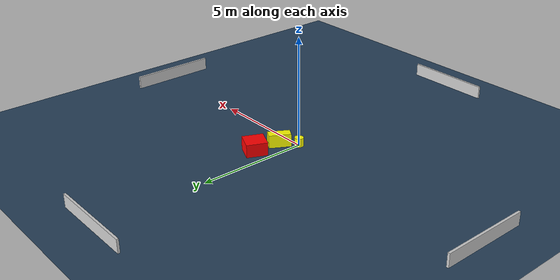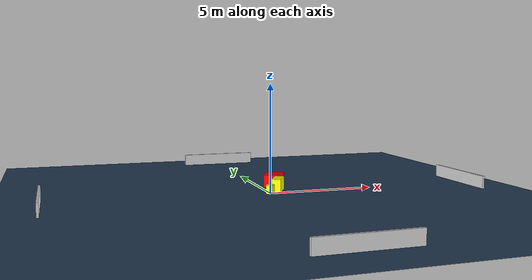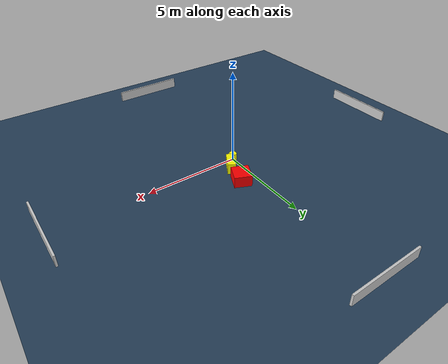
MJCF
<?xml version="1.0" ?>
<mujoco model="generated_environment">
  <option timestep="0.01" integrator="RK4" cone="elliptic"/>
  <default>
    <geom density="1"/>
  </default>
  <asset>
    <texture builtin="gradient" height="3072" name="skybox" rgb1="0.3 0.5 0.7" rgb2="0 0 0" type="skybox" width="512"/>
    <texture builtin="checker" height="300" name="groundplane" rgb1="0.2 0.3 0.4" rgb2="0.1 0.2 0.3" type="2d" width="300"/>
    <material name="groundplane" reflectance="0.2" texrepeat="5 5" texture="groundplane"/>
  </asset>
  <worldbody>
    <light dir="0 0 -1" directional="true" pos="0 0 1.5"/>
    <geom condim="3" friction="0.5 0.005 0.001" material="groundplane" name="floor" pos="0 0 0" size="0 0 0.05" type="plane"/>
    <body name="walls">
      <geom name="wall_1" condim="4" pos="-10.0 0.0 0.3" rgba="0.800000011920929 0.800000011920929 0.800000011920929 1.0" size="0.05 2.0 0.3" type="box"/>
      <geom name="wall_2" condim="4" pos="10.0 0.0 0.3" rgba="0.800000011920929 0.800000011920929 0.800000011920929 1.0" size="0.05 2.0 0.3" type="box"/>
      <geom name="wall_3" condim="4" pos="0.0 -10.0 0.3" rgba="0.800000011920929 0.800000011920929 0.800000011920929 1.0" size="2.0 0.05 0.3" type="box"/>
      <geom name="wall_4" condim="4" pos="0.0 10.0 0.3" rgba="0.800000011920929 0.800000011920929 0.800000011920929 1.0" size="2.0 0.05 0.3" type="box"/>
    </body>
    <body name="robot">
      <joint name="joint_x" type="slide" pos="0 0 0" axis="1 0 0"/>
      <joint name="joint_y" type="slide" pos="0 0 0" axis="0 1 0"/>
      <geom name="robot" type="cylinder" pos="0.0 0.0 0.2" size="0.2 0.2 0.0" mass="5.0" friction="1.0 0.005 0.0001" condim="4" rgba="1.0 1.0 0.0 1.0"/>
    </body>
    <body name="obstacle_1_movable">
      <geom name="obstacle_1_movable" condim="4" pos="0.5835835873793656 0.629566771790912 0.3" euler="0 0 330.26187383951725" friction="0.0 0.005 0.001" rgba="1.0 1.0 0.0 1.0" size="0.21317349750155173 0.4969208716786579 0.3" type="box" mass="0.1"/>
      <joint type="free"/>
    </body>
    <body name="obstacle_2_static">
      <geom name="obstacle_2_static" condim="4" pos="0.7902478003953028 1.8204483511317213 0.3" euler="0 0 335.62245939588456" friction="0.0 0.005 0.001" rgba="1.0 0.0 0.0 1.0" size="0.45258417840251247 0.4750252412547575 0.3" type="box"/>
    </body>
  </worldbody>
  <actuator>
    <motor name="actuator_x" joint="joint_x" gear="1" ctrlrange="-1 1"/>
    <motor name="actuator_y" joint="joint_y" gear="1" ctrlrange="-1 1"/>
  </actuator>
</mujoco>
